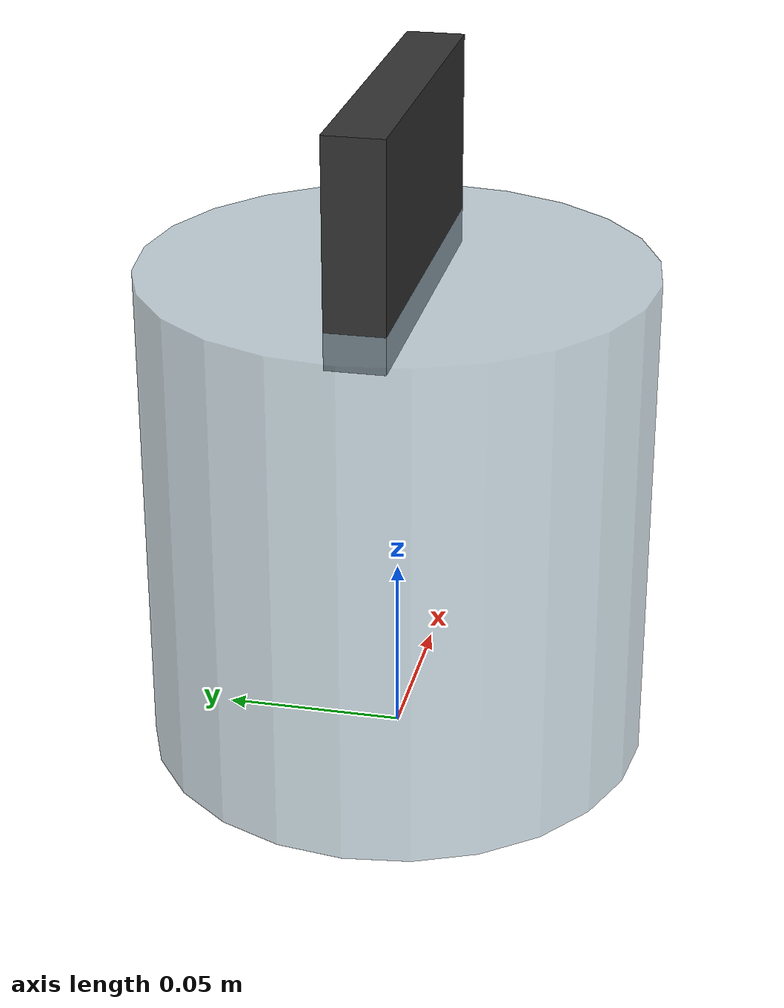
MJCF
<?xml version="1.0" encoding="utf-8"?>
<mujoco model="flotation_cell">
  <compiler angle="radian" autolimits="true"/>
  <default>
    <default class="body"><geom contype="1" conaffinity="1"/></default>
  </default>
  <worldbody>
    <body name="base">
      <geom type="cylinder" size="0.07 0.07" pos="0 0 0.07" rgba="0.6 0.7 0.75 0.6" class="body"/>
      <body name="paddle" pos="0 0 0.16">
        <joint name="paddle_joint" type="hinge" axis="0 0 1" range="-3.14159 3.14159" damping="0.2" frictionloss="0.05"/>
  <geom type="box" size="0.05 0.008 0.03" pos="0 0 0" rgba="0.2 0.2 0.2 1" class="body"/>
      </body>
    </body>
  </worldbody>
</mujoco>
